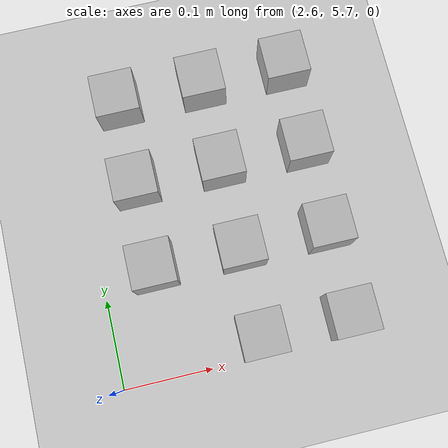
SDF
<sdf version="1.6">
 <world name="default">
  <model name="ground_plane">
   <static>1</static>
   <link name="link">
    <collision name="collision">
     <geometry><plane><normal>0 0 1</normal><size>100 100</size></plane></geometry>
     <surface><friction><ode><mu>100</mu><mu2>50</mu2></ode></friction></surface>
    </collision>
    <visual name="visual">
     <cast_shadows>0</cast_shadows>
     <geometry><plane><normal>0 0 1</normal><size>100 100</size></plane></geometry>
     <material>
      <script><uri>file://media/materials/scripts/gazebo.material</uri><name>Gazebo/Grey</name></script>
     </material>
    </visual>
   </link>
  </model>
  <model name="at4">
   <static>0</static>
   <link name="link">
    <inertial>
     <mass>0.01</mass>
     <inertia><ixx>4e-05</ixx><ixy>0</ixy><ixz>0</ixz><iyy>4e-05</iyy><iyz>0</iyz><izz>4e-05</izz></inertia>
    </inertial>
    <visual name="visual">
     <geometry><box><size>0.05 0.05 0.05</size></box></geometry>
     <material>
      <script>
       <uri>model://at0/materials/scripts</uri>
       <uri>model://at0/materials/textures</uri>
       <name>at0/Diffuse</name>
      </script>
     </material>
    </visual>
    <collision name="collision">
     <geometry><box><size>0.05 0.05 0.05</size></box></geometry>
     <surface><friction><ode><mu>0.8</mu><mu2>0.7</mu2></ode></friction></surface>
    </collision>
   </link>
   <pose>2.7606 5.72392 0.025 0 -0 0</pose>
  </model>
  <model name="at5">
   <static>0</static>
   <link name="link">
    <inertial>
     <mass>0.01</mass>
     <inertia><ixx>4e-05</ixx><ixy>0</ixy><ixz>0</ixz><iyy>4e-05</iyy><iyz>0</iyz><izz>4e-05</izz></inertia>
    </inertial>
    <visual name="visual">
     <geometry><box><size>0.05 0.05 0.05</size></box></geometry>
     <material>
      <script>
       <uri>model://at0/materials/scripts</uri>
       <uri>model://at0/materials/textures</uri>
       <name>at0/Diffuse</name>
      </script>
     </material>
    </visual>
    <collision name="collision">
     <geometry><box><size>0.05 0.05 0.05</size></box></geometry>
     <surface><friction><ode><mu>0.8</mu><mu2>0.7</mu2></ode></friction></surface>
    </collision>
   </link>
   <pose>2.8606 5.72392 0.025 0 -0 0</pose>
  </model>
  <model name="at11">
   <static>0</static>
   <link name="link">
    <inertial>
     <mass>0.01</mass>
     <inertia><ixx>4e-05</ixx><ixy>0</ixy><ixz>0</ixz><iyy>4e-05</iyy><iyz>0</iyz><izz>4e-05</izz></inertia>
    </inertial>
    <visual name="visual">
     <geometry><box><size>0.05 0.05 0.05</size></box></geometry>
     <material>
      <script>
       <uri>model://at0/materials/scripts</uri>
       <uri>model://at0/materials/textures</uri>
       <name>at0/Diffuse</name>
      </script>
     </material>
    </visual>
    <collision name="collision">
     <geometry><box><size>0.05 0.05 0.05</size></box></geometry>
     <surface><friction><ode><mu>0.8</mu><mu2>0.7</mu2></ode></friction></surface>
    </collision>
   </link>
   <pose>2.6606 5.82392 0.025 0 -0 0</pose>
  </model>
  <model name="at12">
   <static>0</static>
   <link name="link">
    <inertial>
     <mass>0.01</mass>
     <inertia><ixx>4e-05</ixx><ixy>0</ixy><ixz>0</ixz><iyy>4e-05</iyy><iyz>0</iyz><izz>4e-05</izz></inertia>
    </inertial>
    <visual name="visual">
     <geometry><box><size>0.05 0.05 0.05</size></box></geometry>
     <material>
      <script>
       <uri>model://at0/materials/scripts</uri>
       <uri>model://at0/materials/textures</uri>
       <name>at0/Diffuse</name>
      </script>
     </material>
    </visual>
    <collision name="collision">
     <geometry><box><size>0.05 0.05 0.05</size></box></geometry>
     <surface><friction><ode><mu>0.8</mu><mu2>0.7</mu2></ode></friction></surface>
    </collision>
   </link>
   <pose>2.7606 5.82392 0.025 0 -0 0</pose>
  </model>
  <model name="at13">
   <static>0</static>
   <link name="link">
    <inertial>
     <mass>0.01</mass>
     <inertia><ixx>4e-05</ixx><ixy>0</ixy><ixz>0</ixz><iyy>4e-05</iyy><iyz>0</iyz><izz>4e-05</izz></inertia>
    </inertial>
    <visual name="visual">
     <geometry><box><size>0.05 0.05 0.05</size></box></geometry>
     <material>
      <script>
       <uri>model://at0/materials/scripts</uri>
       <uri>model://at0/materials/textures</uri>
       <name>at0/Diffuse</name>
      </script>
     </material>
    </visual>
    <collision name="collision">
     <geometry><box><size>0.05 0.05 0.05</size></box></geometry>
     <surface><friction><ode><mu>0.8</mu><mu2>0.7</mu2></ode></friction></surface>
    </collision>
   </link>
   <pose>2.8606 5.82392 0.025 0 -0 0</pose>
  </model>
  <model name="at19">
   <static>0</static>
   <link name="link">
    <inertial>
     <mass>0.01</mass>
     <inertia><ixx>4e-05</ixx><ixy>0</ixy><ixz>0</ixz><iyy>4e-05</iyy><iyz>0</iyz><izz>4e-05</izz></inertia>
    </inertial>
    <visual name="visual">
     <geometry><box><size>0.05 0.05 0.05</size></box></geometry>
     <material>
      <script>
       <uri>model://at0/materials/scripts</uri>
       <uri>model://at0/materials/textures</uri>
       <name>at0/Diffuse</name>
      </script>
     </material>
    </visual>
    <collision name="collision">
     <geometry><box><size>0.05 0.05 0.05</size></box></geometry>
     <surface><friction><ode><mu>0.8</mu><mu2>0.7</mu2></ode></friction></surface>
    </collision>
   </link>
   <pose>2.6606 5.92392 0.025 0 -0 0</pose>
  </model>
  <model name="at20">
   <static>0</static>
   <link name="link">
    <inertial>
     <mass>0.01</mass>
     <inertia><ixx>4e-05</ixx><ixy>0</ixy><ixz>0</ixz><iyy>4e-05</iyy><iyz>0</iyz><izz>4e-05</izz></inertia>
    </inertial>
    <visual name="visual">
     <geometry><box><size>0.05 0.05 0.05</size></box></geometry>
     <material>
      <script>
       <uri>model://at0/materials/scripts</uri>
       <uri>model://at0/materials/textures</uri>
       <name>at0/Diffuse</name>
      </script>
     </material>
    </visual>
    <collision name="collision">
     <geometry><box><size>0.05 0.05 0.05</size></box></geometry>
     <surface><friction><ode><mu>0.8</mu><mu2>0.7</mu2></ode></friction></surface>
    </collision>
   </link>
   <pose>2.7606 5.92392 0.025 0 -0 0</pose>
  </model>
  <model name="at21">
   <static>0</static>
   <link name="link">
    <inertial>
     <mass>0.01</mass>
     <inertia><ixx>4e-05</ixx><ixy>0</ixy><ixz>0</ixz><iyy>4e-05</iyy><iyz>0</iyz><izz>4e-05</izz></inertia>
    </inertial>
    <visual name="visual">
     <geometry><box><size>0.05 0.05 0.05</size></box></geometry>
     <material>
      <script>
       <uri>model://at0/materials/scripts</uri>
       <uri>model://at0/materials/textures</uri>
       <name>at0/Diffuse</name>
      </script>
     </material>
    </visual>
    <collision name="collision">
     <geometry><box><size>0.05 0.05 0.05</size></box></geometry>
     <surface><friction><ode><mu>0.8</mu><mu2>0.7</mu2></ode></friction></surface>
    </collision>
   </link>
   <pose>2.8606 5.92392 0.025 0 -0 0</pose>
  </model>
  <model name="at27">
   <static>0</static>
   <link name="link">
    <inertial>
     <mass>0.01</mass>
     <inertia><ixx>4e-05</ixx><ixy>0</ixy><ixz>0</ixz><iyy>4e-05</iyy><iyz>0</iyz><izz>4e-05</izz></inertia>
    </inertial>
    <visual name="visual">
     <geometry><box><size>0.05 0.05 0.05</size></box></geometry>
     <material>
      <script>
       <uri>model://at0/materials/scripts</uri>
       <uri>model://at0/materials/textures</uri>
       <name>at0/Diffuse</name>
      </script>
     </material>
    </visual>
    <collision name="collision">
     <geometry><box><size>0.05 0.05 0.05</size></box></geometry>
     <surface><friction><ode><mu>0.8</mu><mu2>0.7</mu2></ode></friction></surface>
    </collision>
   </link>
   <pose>2.6606 6.02392 0.025 0 -0 0</pose>
  </model>
  <model name="at28">
   <static>0</static>
   <link name="link">
    <inertial>
     <mass>0.01</mass>
     <inertia><ixx>4e-05</ixx><ixy>0</ixy><ixz>0</ixz><iyy>4e-05</iyy><iyz>0</iyz><izz>4e-05</izz></inertia>
    </inertial>
    <visual name="visual">
     <geometry><box><size>0.05 0.05 0.05</size></box></geometry>
     <material>
      <script>
       <uri>model://at0/materials/scripts</uri>
       <uri>model://at0/materials/textures</uri>
       <name>at0/Diffuse</name>
      </script>
     </material>
    </visual>
    <collision name="collision">
     <geometry><box><size>0.05 0.05 0.05</size></box></geometry>
     <surface><friction><ode><mu>0.8</mu><mu2>0.7</mu2></ode></friction></surface>
    </collision>
   </link>
   <pose>2.7606 6.02392 0.025 0 -0 0</pose>
  </model>
  <model name="at29">
   <static>0</static>
   <link name="link">
    <inertial>
     <mass>0.01</mass>
     <inertia><ixx>4e-05</ixx><ixy>0</ixy><ixz>0</ixz><iyy>4e-05</iyy><iyz>0</iyz><izz>4e-05</izz></inertia>
    </inertial>
    <visual name="visual">
     <geometry><box><size>0.05 0.05 0.05</size></box></geometry>
     <material>
      <script>
       <uri>model://at0/materials/scripts</uri>
       <uri>model://at0/materials/textures</uri>
       <name>at0/Diffuse</name>
      </script>
     </material>
    </visual>
    <collision name="collision">
     <geometry><box><size>0.05 0.05 0.05</size></box></geometry>
     <surface><friction><ode><mu>0.8</mu><mu2>0.7</mu2></ode></friction></surface>
    </collision>
   </link>
   <pose>2.8606 6.02392 0.025 0 -0 0</pose>
  </model>
 </world>
</sdf>
